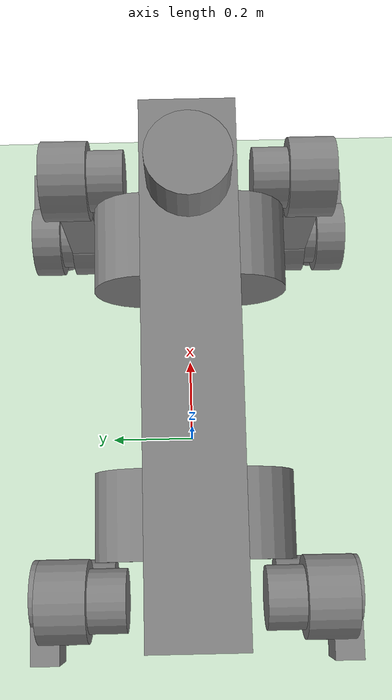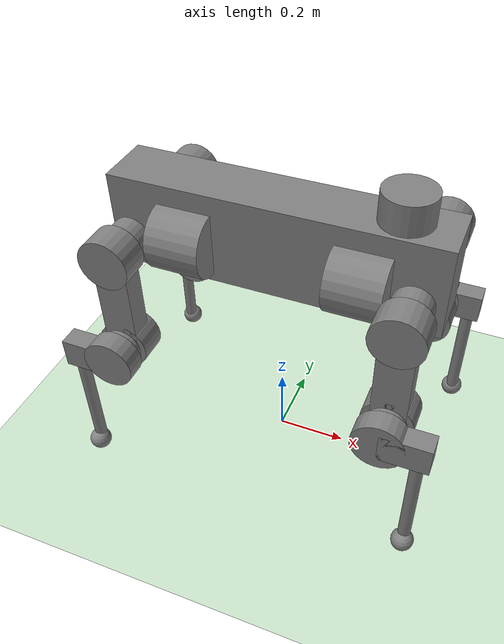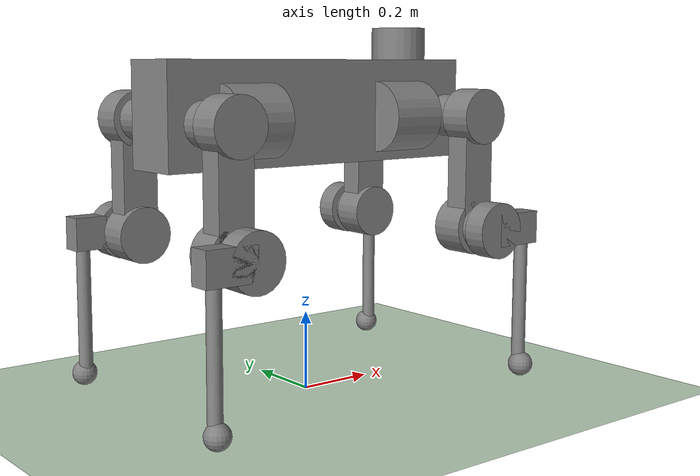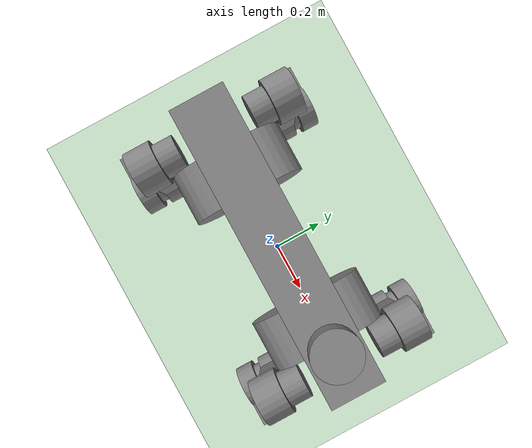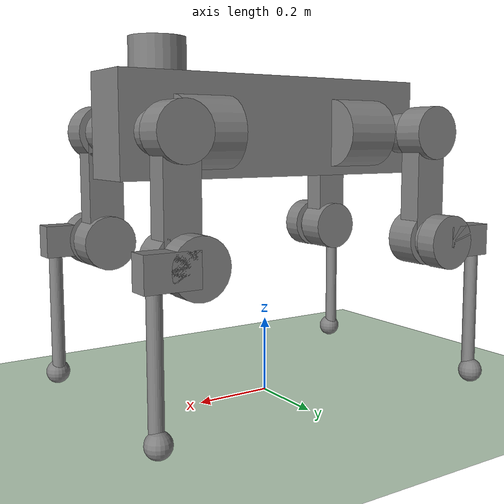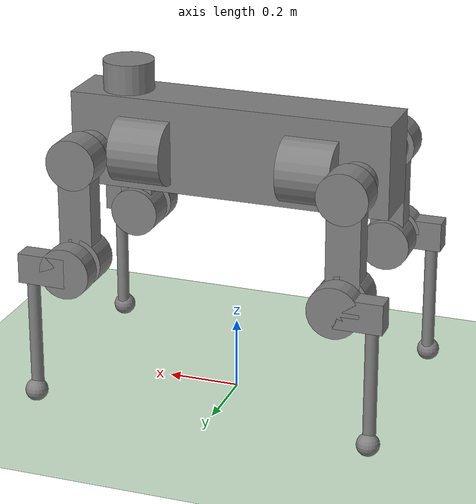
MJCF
<mujoco model="anymal">
  <compiler angle="radian"/>

  <option cone="elliptic" impratio="100"/>

  <default>
    <material specular="0" shininess="0.25"/>
    <default class="anymal">
      <joint damping="1" frictionloss="0.1"/>

      <default class="visual">
        <geom type="mesh" contype="0" conaffinity="0" group="2"/>
        <default class="visual_zflip">
          <geom quat="0 0 0 1"/>
        </default>
      </default>
      <default class="collision">
        <geom group="3" type="cylinder"/>
        <default class="foot">
          <geom type="sphere" size="0.03" pos="0 0 0.02325" priority="1" solimp="0.015 1 0.03" condim="6"
            friction="0.8 0.02 0.01"/>
        </default>
      </default>

      <default class="affine">
        <position kp="150" kv="5.0" ctrlrange="-6.28 6.28" forcelimited="true" forcerange="-80 80"/>
      </default>
    </default>
  </default>

  <worldbody>
     <geom name="ground" type="plane" size="5 5 0.1" pos="0 0 0" rgba="0.8 0.9 0.8 1"/>
    <body name="base" pos="0 0 0.7" quat="0 0 0 1" childclass="anymal">
      <freejoint/>
      <inertial mass="19.2035" pos="0.0025 0 0.0502071" quat="0.5 0.5 0.5 0.5" diaginertia="0.639559 0.624031 0.217374"/>
    <geom size="0.447 0.08075 0.128" pos="0 0 0.016" type="box"/>
    <geom size="0.089 0.0741" pos="0.2353 0.08075 0" quat="0.707107 0 0.707107 0" type="cylinder"/>
    <geom size="0.089 0.0741" pos="0.2353 -0.08075 0" quat="0.707107 0 0.707107 0" type="cylinder"/>
    <geom size="0.089 0.0741" pos="-0.2353 0.08075 0" quat="0.707107 0 0.707107 0" type="cylinder"/>
    <geom size="0.089 0.0741" pos="-0.2353 -0.08075 0" quat="0.707107 0 0.707107 0" type="cylinder"/>
    <geom size="0.07 0.06775" pos="-0.31 0 0.1585" quat="0 0 0 1" type="cylinder"/>
    <geom size="0.08 0.0675 0.0075" pos="0.14253 0 0.092" type="box"/>
    <body name="LF_HIP" pos="0.304 0.109 0">
      <inertial pos="0.035047 -0.00122677 0" quat="0.502484 0.502593 0.497424 0.497473" mass="0.36586" diaginertia="0.000558279 0.000443321 0.00023849"/>
      <joint name="LF_HAA" pos="0 0 0" axis="1 0 0" range="-0.785398 0.610865" actuatorfrcrange="-80 80"/>
      <body name="LF_THIGH" pos="0.069 0.006 0" quat="0.707107 0 0 -0.707107">
        <inertial pos="-0.0669974 0.110833 -0.121809" quat="0.82477 0.350326 -0.0866721 0.435332" mass="5.1322" diaginertia="0.141944 0.134818 0.0208969"/>
        <joint name="LF_HFE" pos="0 0 0" axis="-1 0 0" range="-9.42478 9.42478" actuatorfrcrange="-80 80"/>
        <geom size="0.05375 0.0595" pos="-0.0595 0 0" quat="0.707107 0 0.707107 0" type="cylinder"/>
        <geom size="0.07 0.041565" pos="-0.105195 0 0" quat="0.5 0.5 0.5 0.5" type="cylinder"/>
        <geom size="0.0465 0.0315 0.1425" pos="-0.09513 0 -0.1425" quat="0.707107 0 0 0.707107" type="box"/>
        <geom size="0.07 0.041565" pos="-0.085065 0 -0.285" quat="0.5 0.5 0.5 0.5" type="cylinder"/>
        <geom size="0.05375 0.0595" pos="-0.121 0 -0.285" quat="0 -0.707107 0 0.707107" type="cylinder"/>
        <body name="LF_SHANK" pos="-0.1805 0 -0.285" quat="0 0 0 1">
          <inertial pos="0.0219778 -0.032671 -0.0911529" quat="0.717756 -0.110094 0.102484 0.679855" mass="0.79598" diaginertia="0.0195917 0.0192615 0.00217426"/>
          <joint name="LF_KFE" pos="0 0 0" axis="1 0 0" range="-9.42478 9.42478" actuatorfrcrange="-80 80"/>
          <geom size="0.071 0.02866" quat="0.5 0.5 -0.5 -0.5" type="cylinder"/>
          <geom size="0.066415 0.04151 0.02866" pos="0 -0.066415 0" quat="0.5 0.5 -0.5 -0.5" type="box"/>
          <geom size="0.0175 0.19786" pos="0.00535885 -0.1 -0.164217" quat="0.707107 0 0 -0.707107" type="cylinder"/>
          <geom size="0.031455" pos="0.0141088 -0.1 -0.362077" quat="0.707107 0 0 -0.707107"/>
        </body>
      </body>
    </body>
    <body name="RF_HIP" pos="0.304 -0.109 0">
      <inertial pos="0.035047 0.00122677 0" quat="0.497473 0.497424 0.502593 0.502484" mass="0.36586" diaginertia="0.000558279 0.000443321 0.00023849"/>
      <joint name="RF_HAA" pos="0 0 0" axis="1 0 0" range="-0.610865 0.785398" actuatorfrcrange="-80 80"/>
      <body name="RF_THIGH" pos="0.069 -0.006 0" quat="0.707107 0 0 0.707107">
        <inertial pos="-0.0669974 0.0715537 -0.121809" quat="0.877467 0.443908 0.0337756 0.178482" mass="5.1322" diaginertia="0.180218 0.150529 0.0404455"/>
        <joint name="RF_HFE" pos="0 0 0" axis="1 0 0" range="-9.42478 9.42478" actuatorfrcrange="-80 80"/>
        <geom size="0.05375 0.0595" pos="-0.0595 0 0" quat="0.707107 0 0.707107 0" type="cylinder"/>
        <geom size="0.07 0.041565" pos="-0.105195 0 0" quat="0.5 0.5 -0.5 -0.5" type="cylinder"/>
        <geom size="0.0465 0.0315 0.1425" pos="-0.09513 0 -0.1425" quat="0.707107 0 0 -0.707107" type="box"/>
        <geom size="0.07 0.041565" pos="-0.085065 0 -0.285" quat="0.5 0.5 -0.5 -0.5" type="cylinder"/>
        <geom size="0.05375 0.0595" pos="-0.121 0 -0.285" quat="0 0.707107 0 -0.707107" type="cylinder"/>
        <body name="RF_SHANK" pos="-0.1805 0 -0.285" quat="0 0 0 -1">
          <inertial pos="0.0219778 0.032671 -0.0911529" quat="0.679855 0.102484 -0.110094 0.717756" mass="0.79598" diaginertia="0.0195917 0.0192615 0.00217426"/>
          <joint name="RF_KFE" pos="0 0 0" axis="-1 0 0" range="-9.42478 9.42478" actuatorfrcrange="-80 80"/>
          <geom size="0.071 0.02866" quat="0.5 0.5 0.5 0.5" type="cylinder"/>
          <geom size="0.066415 0.04151 0.02866" pos="0 0.066415 0" quat="0.5 0.5 0.5 0.5" type="box"/>
          <geom size="0.0175 0.19786" pos="0.00535885 0.1 -0.164217" quat="0.707107 0 0 0.707107" type="cylinder"/>
          <geom size="0.031455" pos="0.0141088 0.1 -0.362077" quat="0.707107 0 0 0.707107"/>
        </body>
      </body>
    </body>
    <body name="LH_HIP" pos="-0.304 0.109 0" quat="0 0 0 -1">
      <inertial pos="-0.0346698 -0.00125957 0" quat="0.497686 0.497737 0.502224 0.502332" mass="0.36586" diaginertia="0.000567894 0.000452912 0.000238466"/>
      <joint name="LH_HAA" pos="0 0 0" axis="-1 0 0" range="-0.785398 0.610865" actuatorfrcrange="-80 80"/>
      <body name="LH_THIGH" pos="0.069 -0.006 0" quat="-0.707107 0 0 -0.707107">
        <inertial pos="-0.0668215 0.110833 -0.121809" quat="0.817033 0.348731 -0.0917831 0.44991" mass="5.1322" diaginertia="0.141364 0.135587 0.0209491"/>
        <joint name="LH_HFE" pos="0 0 0" axis="-1 0 0" range="-9.42478 9.42478" actuatorfrcrange="-80 80"/>
        <geom size="0.05375 0.0595" pos="-0.0595 0 0" quat="0.707107 0 0.707107 0" type="cylinder"/>
        <geom size="0.07 0.041565" pos="-0.105195 0 0" quat="0.5 0.5 0.5 0.5" type="cylinder"/>
        <geom size="0.0465 0.0315 0.1425" pos="-0.09513 0 -0.1425" quat="0.707107 0 0 0.707107" type="box"/>
        <geom size="0.07 0.041565" pos="-0.085065 0 -0.285" quat="0.5 0.5 0.5 0.5" type="cylinder"/>
        <geom size="0.05375 0.0595" pos="-0.121 0 -0.285" quat="0 -0.707107 0 0.707107" type="cylinder"/>
        <body name="LH_SHANK" pos="-0.1805 0 -0.285" quat="0 0 0 1">
          <inertial pos="-0.00540503 0.0417739 -0.0887313" quat="0.61262 0.0276484 -0.140258 0.777342" mass="0.79598" diaginertia="0.0189506 0.0180109 0.00186476"/>
          <joint name="LH_KFE" pos="0 0 0" axis="1 0 0" range="-9.42478 9.42478" actuatorfrcrange="-80 80"/>
          <geom size="0.071 0.02866" quat="0.5 0.5 -0.5 -0.5" type="cylinder"/>
          <geom size="0.066415 0.04151 0.02866" pos="0 0.066415 0" quat="0.5 0.5 -0.5 -0.5" type="box"/>
          <geom size="0.0175 0.19786" pos="0.00535885 0.1 -0.164217" quat="0.707107 0 0 -0.707107" type="cylinder"/>
          <geom size="0.031455" pos="0.0141088 0.1 -0.362077" quat="0.707107 0 0 -0.707107"/>
        </body>
      </body>
    </body>
    <body name="RH_HIP" pos="-0.304 -0.109 0" quat="0 0 0 -1">
      <inertial pos="-0.0346698 0.00125957 0" quat="0.502332 0.502224 0.497737 0.497686" mass="0.36586" diaginertia="0.000567894 0.000452912 0.000238466"/>
      <joint name="RH_HAA" pos="0 0 0" axis="-1 0 0" range="-0.610865 0.785398" actuatorfrcrange="-80 80"/>
      <body name="RH_THIGH" pos="0.069 0.006 0" quat="0.707107 0 0 -0.707107">
        <inertial pos="-0.0668215 0.0715537 -0.121809" quat="0.877526 0.444091 0.0376701 0.176951" mass="5.1322" diaginertia="0.180487 0.150746 0.0402007"/>
        <joint name="RH_HFE" pos="0 0 0" axis="1 0 0" range="-9.42478 9.42478" actuatorfrcrange="-80 80"/>
        <geom size="0.05375 0.0595" pos="-0.0595 0 0" quat="0.707107 0 0.707107 0" type="cylinder"/>
        <geom size="0.07 0.041565" pos="-0.105195 0 0" quat="0.5 0.5 -0.5 -0.5" type="cylinder"/>
        <geom size="0.0465 0.0315 0.1425" pos="-0.09513 0 -0.1425" quat="0.707107 0 0 -0.707107" type="box"/>
        <geom size="0.07 0.041565" pos="-0.085065 0 -0.285" quat="0.5 0.5 -0.5 -0.5" type="cylinder"/>
        <geom size="0.05375 0.0595" pos="-0.121 0 -0.285" quat="0 0.707107 0 -0.707107" type="cylinder"/>
        <body name="RH_SHANK" pos="-0.1805 0 -0.285" quat="0 0 0 -1">
          <inertial pos="-0.00540503 -0.0417739 -0.0887313" quat="0.777342 -0.140258 0.0276484 0.61262" mass="0.79598" diaginertia="0.0189506 0.0180109 0.00186476"/>
          <joint name="RH_KFE" pos="0 0 0" axis="-1 0 0" range="-9.42478 9.42478" actuatorfrcrange="-80 80"/>
          <geom size="0.071 0.02866" quat="0.5 0.5 0.5 0.5" type="cylinder"/>
          <geom size="0.066415 0.04151 0.02866" pos="0 -0.066415 0" quat="0.5 0.5 0.5 0.5" type="box"/>
          <geom size="0.0175 0.19786" pos="0.00535885 -0.1 -0.164217" quat="0.707107 0 0 0.707107" type="cylinder"/>
          <geom size="0.031455" pos="0.0141088 -0.1 -0.362077" quat="0.707107 0 0 0.707107"/>
        </body>
      </body>
    </body>
    </body>
  </worldbody>
    <actuator>
    <position class="affine" joint="LF_HAA" name="LF_HAA"/>
    <position class="affine" joint="LF_HFE" name="LF_HFE"/>
    <position class="affine" joint="LF_KFE" name="LF_KFE"/>
    <position class="affine" joint="RF_HAA" name="RF_HAA"/>
    <position class="affine" joint="RF_HFE" name="RF_HFE"/>
    <position class="affine" joint="RF_KFE" name="RF_KFE"/>
    <position class="affine" joint="LH_HAA" name="LH_HAA"/>
    <position class="affine" joint="LH_HFE" name="LH_HFE"/>
    <position class="affine" joint="LH_KFE" name="LH_KFE"/>
    <position class="affine" joint="RH_HAA" name="RH_HAA"/>
    <position class="affine" joint="RH_HFE" name="RH_HFE"/>
    <position class="affine" joint="RH_KFE" name="RH_KFE"/>
  </actuator>
</mujoco>
